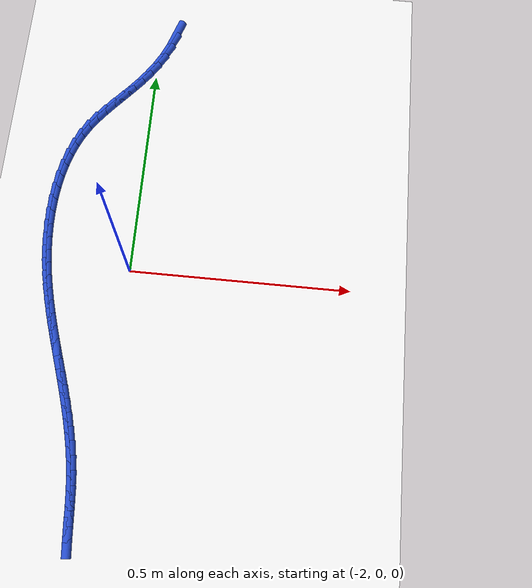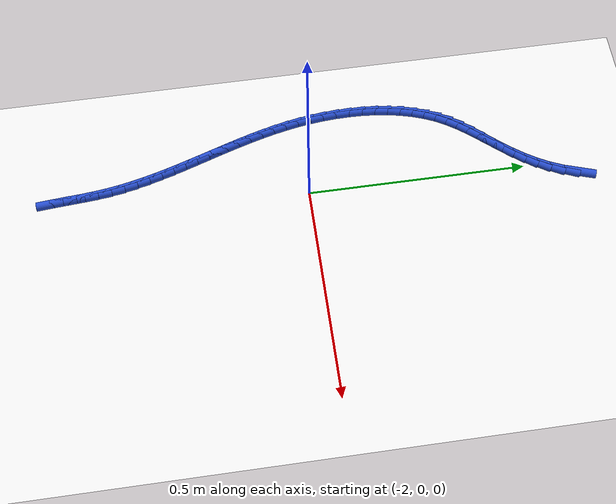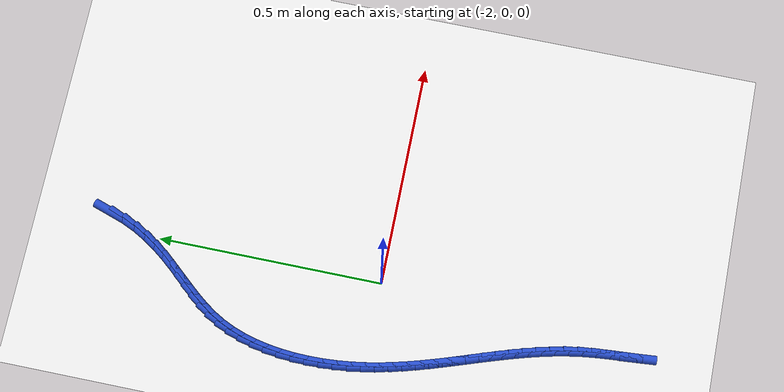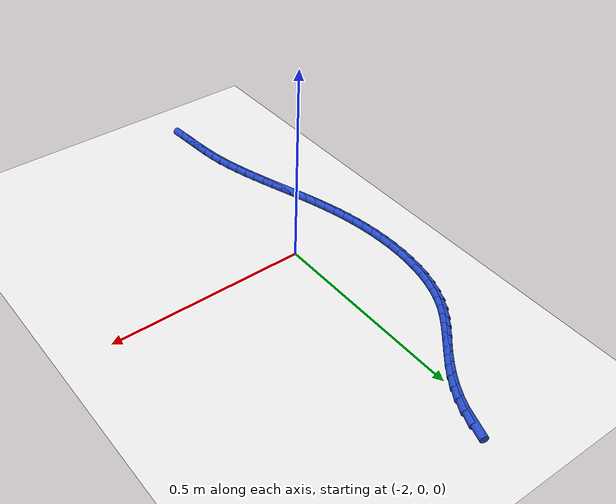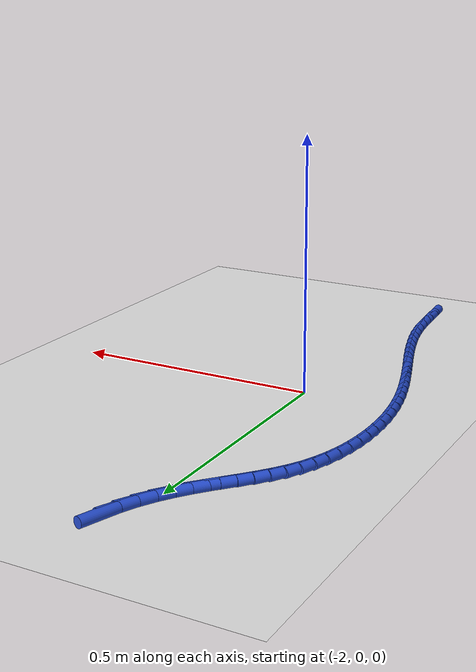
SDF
<sdf version="1.6">
 <world name="default">
  <model name="ground_plane">
   <static>1</static>
   <link name="link">
    <collision name="collision">
     <geometry><plane><normal>0 0 1</normal><size>100 100</size></plane></geometry>
     <surface><friction><ode><mu>100</mu><mu2>50</mu2></ode></friction></surface>
    </collision>
    <visual name="visual">
     <cast_shadows>0</cast_shadows>
     <geometry><plane><normal>0 0 1</normal><size>100 100</size></plane></geometry>
     <material>
      <script><uri>file://media/materials/scripts/gazebo.material</uri><name>Gazebo/WhiteGlow</name></script>
     </material>
    </visual>
   </link>
  </model>
  <model name="line">
   <link name="link_107">
    <pose>-1.9635160581714097 0.6189307252909271 0.01 0 1.57 1.2495617601947875</pose>
    <collision name="collision">
     <geometry><cylinder><radius>0.01</radius><length>0.08</length></cylinder></geometry>
    </collision>
    <visual name="visual">
     <material>
      <script><name>Gazebo/Blue</name><uri>file://media/materials/scripts/gazebo.material</uri></script>
     </material>
     <geometry><cylinder><radius>0.01</radius><length>0.08</length></cylinder></geometry>
    </visual>
   </link>
   <link name="link_108">
    <pose>-1.9747199957431363 0.5852610119920237 0.01 0 1.57 1.1553419941130014</pose>
    <collision name="collision">
     <geometry><cylinder><radius>0.01</radius><length>0.08</length></cylinder></geometry>
    </collision>
    <visual name="visual">
     <material>
      <script><name>Gazebo/Blue</name><uri>file://media/materials/scripts/gazebo.material</uri></script>
     </material>
     <geometry><cylinder><radius>0.01</radius><length>0.08</length></cylinder></geometry>
    </visual>
   </link>
   <link name="link_109">
    <pose>-1.988188017494637 0.5547303741030859 0.01 0 1.57 1.067548659005927</pose>
    <collision name="collision">
     <geometry><cylinder><radius>0.01</radius><length>0.08</length></cylinder></geometry>
    </collision>
    <visual name="visual">
     <material>
      <script><name>Gazebo/Blue</name><uri>file://media/materials/scripts/gazebo.material</uri></script>
     </material>
     <geometry><cylinder><radius>0.01</radius><length>0.08</length></cylinder></geometry>
    </visual>
   </link>
   <link name="link_110">
    <pose>-2.0035128617308953 0.5268936896188856 0.01 0 1.57 0.9908259532900138</pose>
    <collision name="collision">
     <geometry><cylinder><radius>0.01</radius><length>0.08</length></cylinder></geometry>
    </collision>
    <visual name="visual">
     <material>
      <script><name>Gazebo/Blue</name><uri>file://media/materials/scripts/gazebo.material</uri></script>
     </material>
     <geometry><cylinder><radius>0.01</radius><length>0.08</length></cylinder></geometry>
    </visual>
   </link>
   <link name="link_111">
    <pose>-2.0202818544983643 0.5012971020111022 0.01 0 1.57 0.9288369827605524</pose>
    <collision name="collision">
     <geometry><cylinder><radius>0.01</radius><length>0.08</length></cylinder></geometry>
    </collision>
    <visual name="visual">
     <material>
      <script><name>Gazebo/Blue</name><uri>file://media/materials/scripts/gazebo.material</uri></script>
     </material>
     <geometry><cylinder><radius>0.01</radius><length>0.08</length></cylinder></geometry>
    </visual>
   </link>
   <link name="link_112">
    <pose>-2.0380823218434974 0.47748675475141394 0.01 0 1.57 0.8843155971254837</pose>
    <collision name="collision">
     <geometry><cylinder><radius>0.01</radius><length>0.08</length></cylinder></geometry>
    </collision>
    <visual name="visual">
     <material>
      <script><name>Gazebo/Blue</name><uri>file://media/materials/scripts/gazebo.material</uri></script>
     </material>
     <geometry><cylinder><radius>0.01</radius><length>0.08</length></cylinder></geometry>
    </visual>
   </link>
   <link name="link_113">
    <pose>-2.056501589812746 0.4550087913114991 0.01 0 1.57 0.8591993454785766</pose>
    <collision name="collision">
     <geometry><cylinder><radius>0.01</radius><length>0.08</length></cylinder></geometry>
    </collision>
    <visual name="visual">
     <material>
      <script><name>Gazebo/Blue</name><uri>file://media/materials/scripts/gazebo.material</uri></script>
     </material>
     <geometry><cylinder><radius>0.01</radius><length>0.08</length></cylinder></geometry>
    </visual>
   </link>
   <link name="link_114">
    <pose>-2.0751269844525635 0.4334093551630362 0.01 0 1.57 0.8548911962602023</pose>
    <collision name="collision">
     <geometry><cylinder><radius>0.01</radius><length>0.08</length></cylinder></geometry>
    </collision>
    <visual name="visual">
     <material>
      <script><name>Gazebo/Blue</name><uri>file://media/materials/scripts/gazebo.material</uri></script>
     </material>
     <geometry><cylinder><radius>0.01</radius><length>0.08</length></cylinder></geometry>
    </visual>
   </link>
   <link name="link_115">
    <pose>-2.0935458318094033 0.4122345897777036 0.01 0 1.57 0.8724599051900421</pose>
    <collision name="collision">
     <geometry><cylinder><radius>0.01</radius><length>0.08</length></cylinder></geometry>
    </collision>
    <visual name="visual">
     <material>
      <script><name>Gazebo/Blue</name><uri>file://media/materials/scripts/gazebo.material</uri></script>
     </material>
     <geometry><cylinder><radius>0.01</radius><length>0.08</length></cylinder></geometry>
    </visual>
   </link>
   <link name="link_116">
    <pose>-2.111345457929717 0.39103063862718035 0.01 0 1.57 0.9126306269766941</pose>
    <collision name="collision">
     <geometry><cylinder><radius>0.01</radius><length>0.08</length></cylinder></geometry>
    </collision>
    <visual name="visual">
     <material>
      <script><name>Gazebo/Blue</name><uri>file://media/materials/scripts/gazebo.material</uri></script>
     </material>
     <geometry><cylinder><radius>0.01</radius><length>0.08</length></cylinder></geometry>
    </visual>
   </link>
   <link name="link_117">
    <pose>-2.128113188859957 0.36934364518314444 0.01 0 1.57 0.9754682810334008</pose>
    <collision name="collision">
     <geometry><cylinder><radius>0.01</radius><length>0.08</length></cylinder></geometry>
    </collision>
    <visual name="visual">
     <material>
      <script><name>Gazebo/Blue</name><uri>file://media/materials/scripts/gazebo.material</uri></script>
     </material>
     <geometry><cylinder><radius>0.01</radius><length>0.08</length></cylinder></geometry>
    </visual>
   </link>
   <link name="link_118">
    <pose>-2.143436350646578 0.3467197529172744 0.01 0 1.57 1.0594637026073068</pose>
    <collision name="collision">
     <geometry><cylinder><radius>0.01</radius><length>0.08</length></cylinder></geometry>
    </collision>
    <visual name="visual">
     <material>
      <script><name>Gazebo/Blue</name><uri>file://media/materials/scripts/gazebo.material</uri></script>
     </material>
     <geometry><cylinder><radius>0.01</radius><length>0.08</length></cylinder></geometry>
    </visual>
   </link>
   <link name="link_119">
    <pose>-2.156907400223535 0.32271187715037974 0.01 0 1.57 1.1508419881043435</pose>
    <collision name="collision">
     <geometry><cylinder><radius>0.01</radius><length>0.08</length></cylinder></geometry>
    </collision>
    <visual name="visual">
     <material>
      <script><name>Gazebo/Blue</name><uri>file://media/materials/scripts/gazebo.material</uri></script>
     </material>
     <geometry><cylinder><radius>0.01</radius><length>0.08</length></cylinder></geometry>
    </visual>
   </link>
   <link name="link_120">
    <pose>-2.168324009919273 0.29714378063261127 0.01 0 1.57 1.2341905960472104</pose>
    <collision name="collision">
     <geometry><cylinder><radius>0.01</radius><length>0.08</length></cylinder></geometry>
    </collision>
    <visual name="visual">
     <material>
      <script><name>Gazebo/Blue</name><uri>file://media/materials/scripts/gazebo.material</uri></script>
     </material>
     <geometry><cylinder><radius>0.01</radius><length>0.08</length></cylinder></geometry>
    </visual>
   </link>
   <link name="link_121">
    <pose>-2.177753810395588 0.2701955225839832 0.01 0 1.57 1.3092232432386512</pose>
    <collision name="collision">
     <geometry><cylinder><radius>0.01</radius><length>0.08</length></cylinder></geometry>
    </collision>
    <visual name="visual">
     <material>
      <script><name>Gazebo/Blue</name><uri>file://media/materials/scripts/gazebo.material</uri></script>
     </material>
     <geometry><cylinder><radius>0.01</radius><length>0.08</length></cylinder></geometry>
    </visual>
   </link>
   <link name="link_122">
    <pose>-2.185282817759393 0.2420714277069284 0.01 0 1.57 1.3768695496054744</pose>
    <collision name="collision">
     <geometry><cylinder><radius>0.01</radius><length>0.08</length></cylinder></geometry>
    </collision>
    <visual name="visual">
     <material>
      <script><name>Gazebo/Blue</name><uri>file://media/materials/scripts/gazebo.material</uri></script>
     </material>
     <geometry><cylinder><radius>0.01</radius><length>0.08</length></cylinder></geometry>
    </visual>
   </link>
   <link name="link_123">
    <pose>-2.190997048117599 0.2129758207038793 0.01 0 1.57 1.4381209703098996</pose>
    <collision name="collision">
     <geometry><cylinder><radius>0.01</radius><length>0.08</length></cylinder></geometry>
    </collision>
    <visual name="visual">
     <material>
      <script><name>Gazebo/Blue</name><uri>file://media/materials/scripts/gazebo.material</uri></script>
     </material>
     <geometry><cylinder><radius>0.01</radius><length>0.08</length></cylinder></geometry>
    </visual>
   </link>
   <link name="link_124">
    <pose>-2.1949825175771167 0.1831130262772694 0.01 0 1.57 1.4939496295231502</pose>
    <collision name="collision">
     <geometry><cylinder><radius>0.01</radius><length>0.08</length></cylinder></geometry>
    </collision>
    <visual name="visual">
     <material>
      <script><name>Gazebo/Blue</name><uri>file://media/materials/scripts/gazebo.material</uri></script>
     </material>
     <geometry><cylinder><radius>0.01</radius><length>0.08</length></cylinder></geometry>
    </visual>
   </link>
   <link name="link_125">
    <pose>-2.197325242244859 0.15268736912953104 0.01 0 1.57 1.5452694209628315</pose>
    <collision name="collision">
     <geometry><cylinder><radius>0.01</radius><length>0.08</length></cylinder></geometry>
    </collision>
    <visual name="visual">
     <material>
      <script><name>Gazebo/Blue</name><uri>file://media/materials/scripts/gazebo.material</uri></script>
     </material>
     <geometry><cylinder><radius>0.01</radius><length>0.08</length></cylinder></geometry>
    </visual>
   </link>
   <link name="link_126">
    <pose>-2.1981112382277384 0.12190317396309666 0.01 0 1.57 -1.548668335463189</pose>
    <collision name="collision">
     <geometry><cylinder><radius>0.01</radius><length>0.08</length></cylinder></geometry>
    </collision>
    <visual name="visual">
     <material>
      <script><name>Gazebo/Blue</name><uri>file://media/materials/scripts/gazebo.material</uri></script>
     </material>
     <geometry><cylinder><radius>0.01</radius><length>0.08</length></cylinder></geometry>
    </visual>
   </link>
   <link name="link_127">
    <pose>-2.1974265216326643 0.0909647654804 0.01 0 1.57 -1.503899626483257</pose>
    <collision name="collision">
     <geometry><cylinder><radius>0.01</radius><length>0.08</length></cylinder></geometry>
    </collision>
    <visual name="visual">
     <material>
      <script><name>Gazebo/Blue</name><uri>file://media/materials/scripts/gazebo.material</uri></script>
     </material>
     <geometry><cylinder><radius>0.01</radius><length>0.08</length></cylinder></geometry>
    </visual>
   </link>
   <link name="link_128">
    <pose>-2.1953571085665504 0.06007646838387336 0.01 0 1.57 -1.461289414591496</pose>
    <collision name="collision">
     <geometry><cylinder><radius>0.01</radius><length>0.08</length></cylinder></geometry>
    </collision>
    <visual name="visual">
     <material>
      <script><name>Gazebo/Blue</name><uri>file://media/materials/scripts/gazebo.material</uri></script>
     </material>
     <geometry><cylinder><radius>0.01</radius><length>0.08</length></cylinder></geometry>
    </visual>
   </link>
   <link name="link_129">
    <pose>-2.191989015136308 0.029442607375949552 0.01 0 1.57 -1.4201578147683602</pose>
    <collision name="collision">
     <geometry><cylinder><radius>0.01</radius><length>0.08</length></cylinder></geometry>
    </collision>
    <visual name="visual">
     <material>
      <script><name>Gazebo/Blue</name><uri>file://media/materials/scripts/gazebo.material</uri></script>
     </material>
     <geometry><cylinder><radius>0.01</radius><length>0.08</length></cylinder></geometry>
    </visual>
   </link>
   <link name="link_130">
    <pose>-2.1874085655616513 -0.0007339426004967785 0.01 0 1.57 -1.3811251179458226</pose>
    <collision name="collision">
     <geometry><cylinder><radius>0.01</radius><length>0.08</length></cylinder></geometry>
    </collision>
    <visual name="visual">
     <material>
      <script><name>Gazebo/Blue</name><uri>file://media/materials/scripts/gazebo.material</uri></script>
     </material>
     <geometry><cylinder><radius>0.01</radius><length>0.08</length></cylinder></geometry>
    </visual>
   </link>
   <link name="link_131">
    <pose>-2.181723080154396 -0.030349099269229147 0.01 0 1.57 -1.3462350750579666</pose>
    <collision name="collision">
     <geometry><cylinder><radius>0.01</radius><length>0.08</length></cylinder></geometry>
    </collision>
    <visual name="visual">
     <material>
      <script><name>Gazebo/Blue</name><uri>file://media/materials/scripts/gazebo.material</uri></script>
     </material>
     <geometry><cylinder><radius>0.01</radius><length>0.08</length></cylinder></geometry>
    </visual>
   </link>
   <link name="link_132">
    <pose>-2.1750739544248017 -0.05945911398673227 0.01 0 1.57 -1.316018493740603</pose>
    <collision name="collision">
     <geometry><cylinder><radius>0.01</radius><length>0.08</length></cylinder></geometry>
    </collision>
    <visual name="visual">
     <material>
      <script><name>Gazebo/Blue</name><uri>file://media/materials/scripts/gazebo.material</uri></script>
     </material>
     <geometry><cylinder><radius>0.01</radius><length>0.08</length></cylinder></geometry>
    </visual>
   </link>
   <link name="link_133">
    <pose>-2.1676057016577093 -0.08813490813775937 0.01 0 1.57 -1.290747846393473</pose>
    <collision name="collision">
     <geometry><cylinder><radius>0.01</radius><length>0.08</length></cylinder></geometry>
    </collision>
    <visual name="visual">
     <material>
      <script><name>Gazebo/Blue</name><uri>file://media/materials/scripts/gazebo.material</uri></script>
     </material>
     <geometry><cylinder><radius>0.01</radius><length>0.08</length></cylinder></geometry>
    </visual>
   </link>
   <link name="link_134">
    <pose>-2.1594628351379566 -0.11644740310706111 0.01 0 1.57 -1.2706227596764845</pose>
    <collision name="collision">
     <geometry><cylinder><radius>0.01</radius><length>0.08</length></cylinder></geometry>
    </collision>
    <visual name="visual">
     <material>
      <script><name>Gazebo/Blue</name><uri>file://media/materials/scripts/gazebo.material</uri></script>
     </material>
     <geometry><cylinder><radius>0.01</radius><length>0.08</length></cylinder></geometry>
    </visual>
   </link>
   <link name="link_135">
    <pose>-2.150789868150383 -0.14446752027939067 0.01 0 1.57 -1.255784098533946</pose>
    <collision name="collision">
     <geometry><cylinder><radius>0.01</radius><length>0.08</length></cylinder></geometry>
    </collision>
    <visual name="visual">
     <material>
      <script><name>Gazebo/Blue</name><uri>file://media/materials/scripts/gazebo.material</uri></script>
     </material>
     <geometry><cylinder><radius>0.01</radius><length>0.08</length></cylinder></geometry>
    </visual>
   </link>
   <link name="link_136">
    <pose>-2.1417313139798284 -0.17226618103950042 0.01 0 1.57 -1.2463273534067996</pose>
    <collision name="collision">
     <geometry><cylinder><radius>0.01</radius><length>0.08</length></cylinder></geometry>
    </collision>
    <visual name="visual">
     <material>
      <script><name>Gazebo/Blue</name><uri>file://media/materials/scripts/gazebo.material</uri></script>
     </material>
     <geometry><cylinder><radius>0.01</radius><length>0.08</length></cylinder></geometry>
    </visual>
   </link>
   <link name="link_137">
    <pose>-2.132431685911131 -0.19991430677214264 0.01 0 1.57 -1.2423136011063145</pose>
    <collision name="collision">
     <geometry><cylinder><radius>0.01</radius><length>0.08</length></cylinder></geometry>
    </collision>
    <visual name="visual">
     <material>
      <script><name>Gazebo/Blue</name><uri>file://media/materials/scripts/gazebo.material</uri></script>
     </material>
     <geometry><cylinder><radius>0.01</radius><length>0.08</length></cylinder></geometry>
    </visual>
   </link>
   <link name="link_138">
    <pose>-2.12303549722913 -0.2274828188620697 0.01 0 1.57 -1.2437768833998935</pose>
    <collision name="collision">
     <geometry><cylinder><radius>0.01</radius><length>0.08</length></cylinder></geometry>
    </collision>
    <visual name="visual">
     <material>
      <script><name>Gazebo/Blue</name><uri>file://media/materials/scripts/gazebo.material</uri></script>
     </material>
     <geometry><cylinder><radius>0.01</radius><length>0.08</length></cylinder></geometry>
    </visual>
   </link>
   <link name="link_139">
    <pose>-2.113687261218665 -0.255042638694034 0.01 0 1.57 -1.250727313663631</pose>
    <collision name="collision">
     <geometry><cylinder><radius>0.01</radius><length>0.08</length></cylinder></geometry>
    </collision>
    <visual name="visual">
     <material>
      <script><name>Gazebo/Blue</name><uri>file://media/materials/scripts/gazebo.material</uri></script>
     </material>
     <geometry><cylinder><radius>0.01</radius><length>0.08</length></cylinder></geometry>
    </visual>
   </link>
   <link name="link_140">
    <pose>-2.1045314911645745 -0.2826646876527885 0.01 0 1.57 -1.2631495843653153</pose>
    <collision name="collision">
     <geometry><cylinder><radius>0.01</radius><length>0.08</length></cylinder></geometry>
    </collision>
    <visual name="visual">
     <material>
      <script><name>Gazebo/Blue</name><uri>file://media/materials/scripts/gazebo.material</uri></script>
     </material>
     <geometry><cylinder><radius>0.01</radius><length>0.08</length></cylinder></geometry>
    </visual>
   </link>
   <link name="link_141">
    <pose>-2.095712700351699 -0.31041988712308427 0.01 0 1.57 -1.2809968636744242</pose>
    <collision name="collision">
     <geometry><cylinder><radius>0.01</radius><length>0.08</length></cylinder></geometry>
    </collision>
    <visual name="visual">
     <material>
      <script><name>Gazebo/Blue</name><uri>file://media/materials/scripts/gazebo.material</uri></script>
     </material>
     <geometry><cylinder><radius>0.01</radius><length>0.08</length></cylinder></geometry>
    </visual>
   </link>
   <link name="link_142">
    <pose>-2.0873754020648754 -0.33837915848967415 0.01 0 1.57 -1.3041804198031872</pose>
    <collision name="collision">
     <geometry><cylinder><radius>0.01</radius><length>0.08</length></cylinder></geometry>
    </collision>
    <visual name="visual">
     <material>
      <script><name>Gazebo/Blue</name><uri>file://media/materials/scripts/gazebo.material</uri></script>
     </material>
     <geometry><cylinder><radius>0.01</radius><length>0.08</length></cylinder></geometry>
    </visual>
   </link>
   <link name="link_143">
    <pose>-2.0796641095889448 -0.3666134231373106 0.01 0 1.57 -1.3325557750215542</pose>
    <collision name="collision">
     <geometry><cylinder><radius>0.01</radius><length>0.08</length></cylinder></geometry>
    </collision>
    <visual name="visual">
     <material>
      <script><name>Gazebo/Blue</name><uri>file://media/materials/scripts/gazebo.material</uri></script>
     </material>
     <geometry><cylinder><radius>0.01</radius><length>0.08</length></cylinder></geometry>
    </visual>
   </link>
   <link name="link_144">
    <pose>-2.0727233362087456 -0.395193602450746 0.01 0 1.57 -1.3659068107806616</pose>
    <collision name="collision">
     <geometry><cylinder><radius>0.01</radius><length>0.08</length></cylinder></geometry>
    </collision>
    <visual name="visual">
     <material>
      <script><name>Gazebo/Blue</name><uri>file://media/materials/scripts/gazebo.material</uri></script>
     </material>
     <geometry><cylinder><radius>0.01</radius><length>0.08</length></cylinder></geometry>
    </visual>
   </link>
   <link name="link_145">
    <pose>-2.0666975952091167 -0.42419061781473255 0.01 0 1.57 -1.4039299906193723</pose>
    <collision name="collision">
     <geometry><cylinder><radius>0.01</radius><length>0.08</length></cylinder></geometry>
    </collision>
    <visual name="visual">
     <material>
      <script><name>Gazebo/Blue</name><uri>file://media/materials/scripts/gazebo.material</uri></script>
     </material>
     <geometry><cylinder><radius>0.01</radius><length>0.08</length></cylinder></geometry>
    </visual>
   </link>
   <link name="link_146">
    <pose>-2.0617313998748976 -0.45367539061402284 0.01 0 1.57 -1.445150746260732</pose>
    <collision name="collision">
     <geometry><cylinder><radius>0.01</radius><length>0.08</length></cylinder></geometry>
    </collision>
    <visual name="visual">
     <material>
      <script><name>Gazebo/Blue</name><uri>file://media/materials/scripts/gazebo.material</uri></script>
     </material>
     <geometry><cylinder><radius>0.01</radius><length>0.08</length></cylinder></geometry>
    </visual>
   </link>
   <link name="link_147">
    <pose>-2.057938674070872 -0.483702283732577 0.01 0 1.57 -1.4777634636701926</pose>
    <collision name="collision">
     <geometry><cylinder><radius>0.01</radius><length>0.08</length></cylinder></geometry>
    </collision>
    <visual name="visual">
     <material>
      <script><name>Gazebo/Blue</name><uri>file://media/materials/scripts/gazebo.material</uri></script>
     </material>
     <geometry><cylinder><radius>0.01</radius><length>0.08</length></cylinder></geometry>
    </visual>
   </link>
   <link name="link_148">
    <pose>-2.0550983640485034 -0.5141443317694289 0.01 0 1.57 -1.4953103341043843</pose>
    <collision name="collision">
     <geometry><cylinder><radius>0.01</radius><length>0.08</length></cylinder></geometry>
    </collision>
    <visual name="visual">
     <material>
      <script><name>Gazebo/Blue</name><uri>file://media/materials/scripts/gazebo.material</uri></script>
     </material>
     <geometry><cylinder><radius>0.01</radius><length>0.08</length></cylinder></geometry>
    </visual>
   </link>
   <link name="link_149">
    <pose>-2.052782708018724 -0.5447626752358306 0.01 0 1.57 -1.498206920207184</pose>
    <collision name="collision">
     <geometry><cylinder><radius>0.01</radius><length>0.08</length></cylinder></geometry>
    </collision>
    <visual name="visual">
     <material>
      <script><name>Gazebo/Blue</name><uri>file://media/materials/scripts/gazebo.material</uri></script>
     </material>
     <geometry><cylinder><radius>0.01</radius><length>0.08</length></cylinder></geometry>
    </visual>
   </link>
   <link name="link_150">
    <pose>-2.050560898043397 -0.5753168057179564 0.01 0 1.57 -1.4864080674362528</pose>
    <collision name="collision">
     <geometry><cylinder><radius>0.01</radius><length>0.08</length></cylinder></geometry>
    </collision>
    <visual name="visual">
     <material>
      <script><name>Gazebo/Blue</name><uri>file://media/materials/scripts/gazebo.material</uri></script>
     </material>
     <geometry><cylinder><radius>0.01</radius><length>0.08</length></cylinder></geometry>
    </visual>
   </link>
  </model>
 </world>
</sdf>
